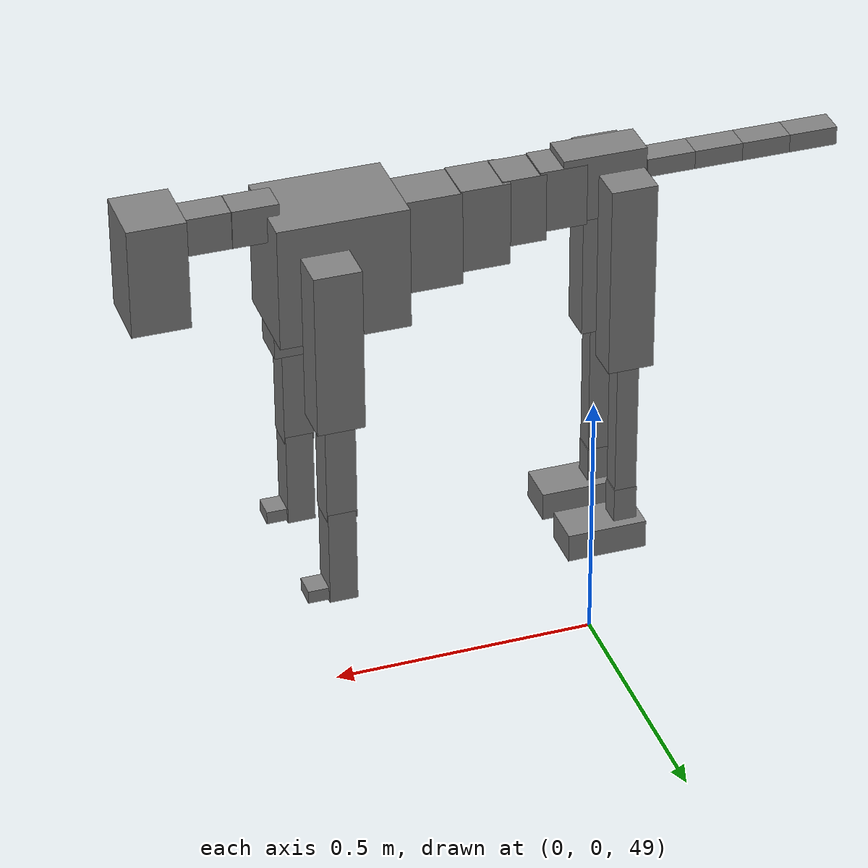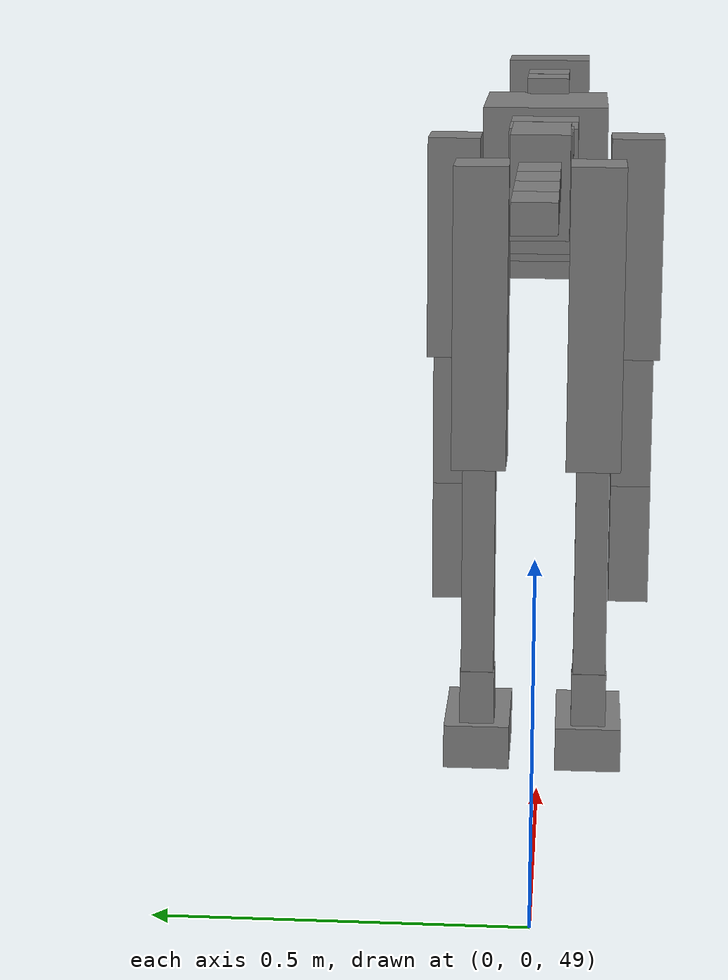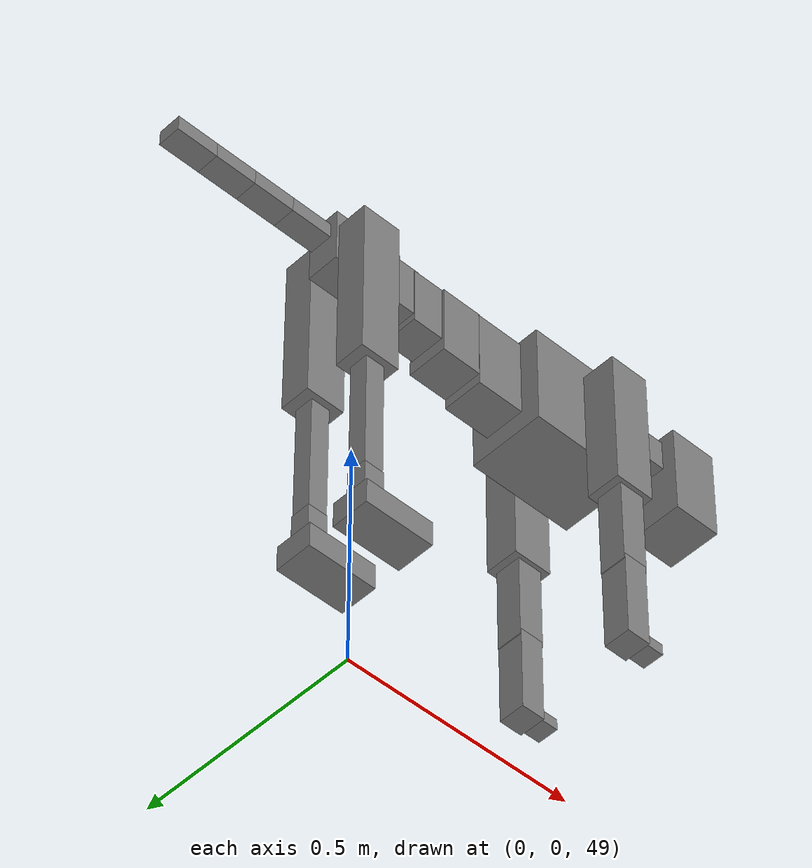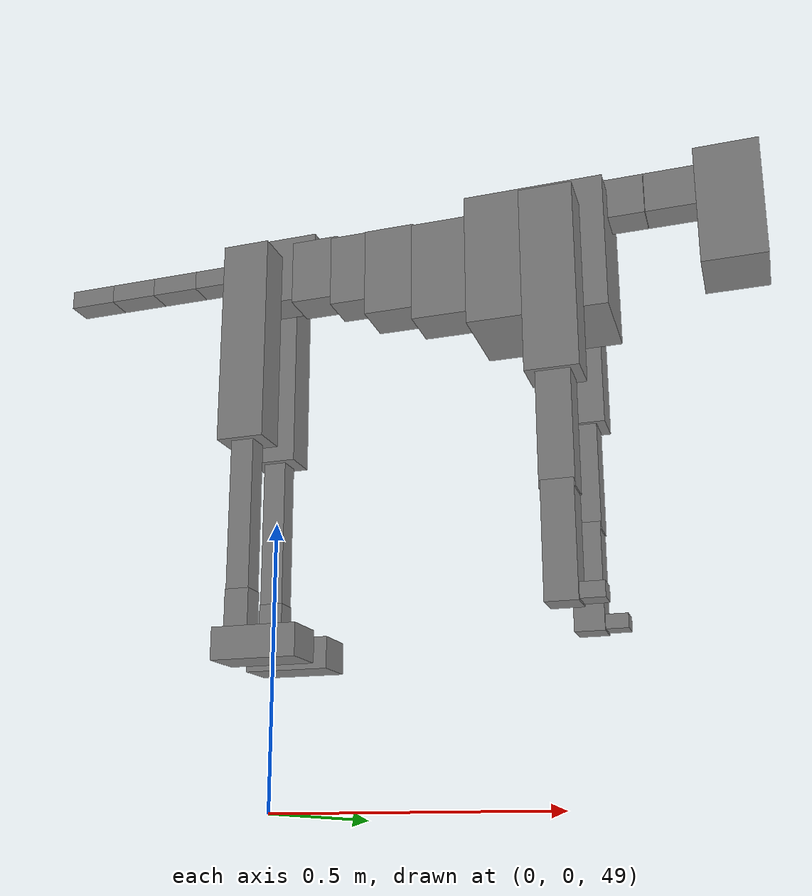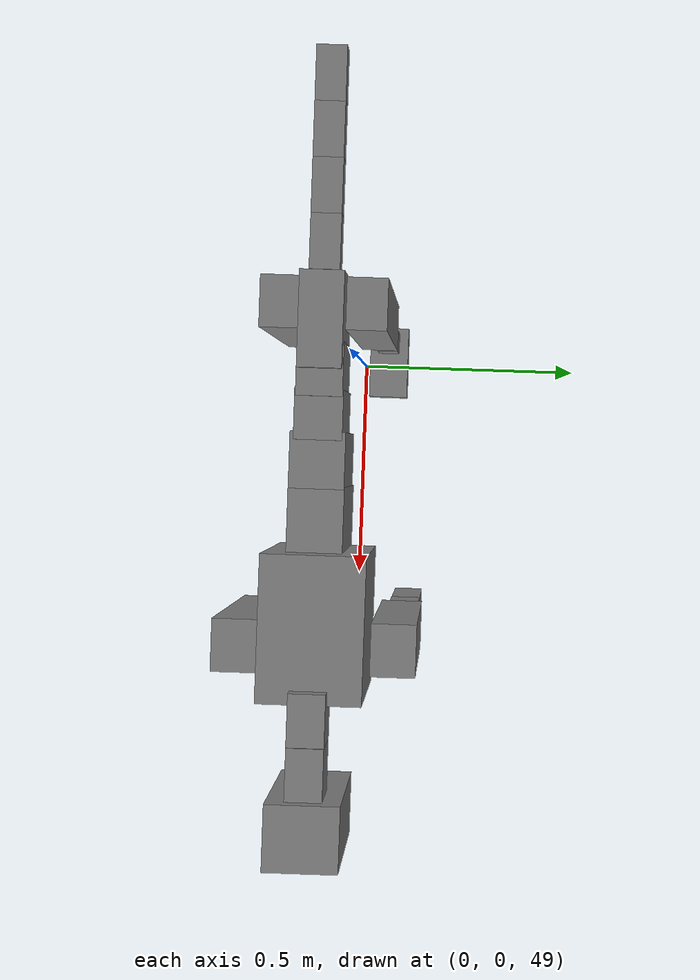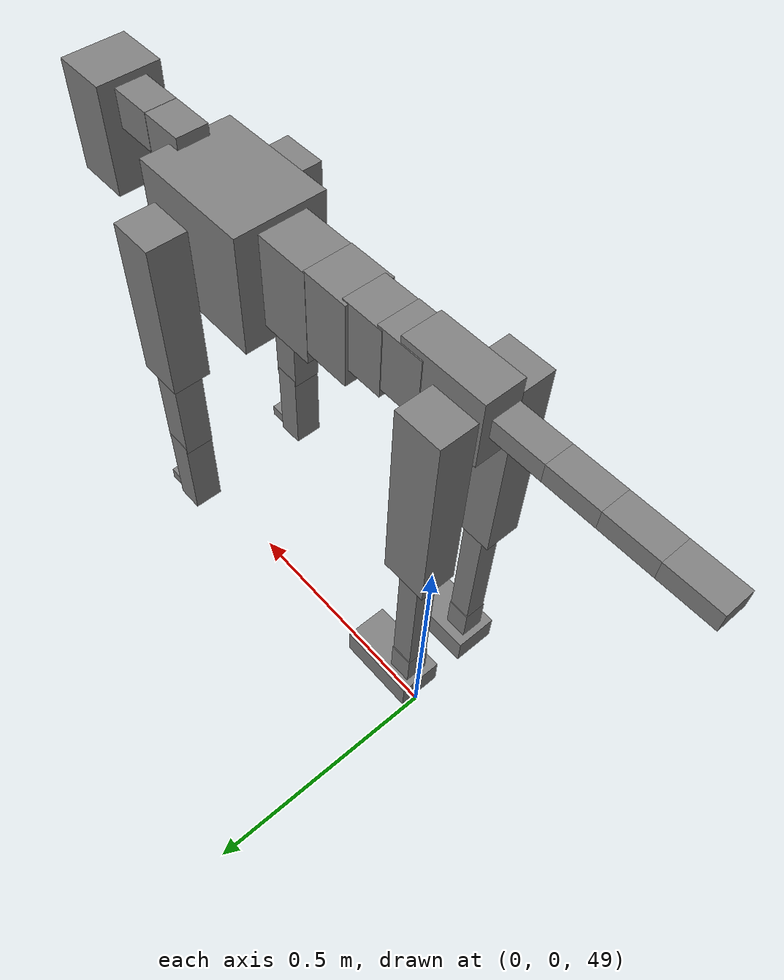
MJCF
<mujoco model="dog">

    <default>
        <joint armature="0.02" stiffness="1" damping="0.2" limited="true"/>
        <geom condim="3" friction="1 0.05 0.05" margin="0.01"/>
        <motor ctrllimited="true" ctrlrange="-1.0 1.0" forcelimited="true" gear="50"/>
    </default>

    <compiler inertiafromgeom="true" angle="radian"/>

    <option timestep="0.016" iterations="50" tolerance="1e-10" solver="Newton" jacobian="dense" cone="pyramidal"/>

    <size nconmax="20000" njmax="60000" nstack="5000000"/>
    <visual>
        <map force="0.1" zfar="30"/>
        <rgba haze="0.15 0.25 0.35 1"/>
        <quality shadowsize="2048"/>
        <global offwidth="800" offheight="800"/>
    </visual>

    <asset>
        <texture type="skybox" builtin="gradient" rgb1="0.3 0.5 0.7" rgb2="0 0 0" width="512" height="512"/>
        <texture name="texplane" type="2d" builtin="checker" rgb1=".2 .3 .4" rgb2=".1 0.15 0.2" width="512" height="512"
                 mark="cross" markrgb=".8 .8 .8"/>
        <texture name="texgeom" type="cube" builtin="flat" mark="cross" width="127" height="1278" rgb1="0.8 0.6 0.4"
                 rgb2="0.8 0.6 0.4" markrgb="1 1 1" random="0.01"/>

        <material name="matplane" reflectance="0.3" texture="texplane" texrepeat="1 1" texuniform="true"/>
        <material name="matgeom" texture="texgeom" texuniform="true" rgba="0.8 0.6 .4 1"/>
    </asset>

    <worldbody>
        <geom name="floor" pos="0 0 0" size="0 0 .25" type="plane" material="matplane" condim="3"/>

        <light directional="false" diffuse=".2 .2 .2" specular="0 0 0" pos="0 0 5" dir="0 0 -1" castshadow="false"/>
        <light mode="targetbodycom" target="torso" directional="false" diffuse=".8 .8 .8" specular="0.3 0.3 0.3"
               pos="0 0 4.0" dir="0 0 -1"/>

        <body name="root" pos="0 0 50">
            <freejoint name="root_1"/>
            <geom type="box" pos="0 0 -0.02" size="0.0774  0.0358  0.063" density="2030"/>

            <body name="spine1" pos="0.054 0 0">
                <joint name="spine1_y" axis="0 1 0" range="0 0.7" limited="true"/>
                <geom type="box" pos="0.02375 0 -0.03" size="0.04375  0.0375  0.05985" density="2030"/>

                <body name="spine2" pos="0.0612 0 0">
                    <joint name="spine2_y" axis="0 1 0" range="-0.15 0.15" limited="true"/>
                    <geom type="box" pos="0.03555  0  -0.04" size="0.04055  0.039  0.06615" density="2030"/>

                    <body name="spine3" pos="0.0730 0 0">
                        <joint name="spine3_y" axis="0 1 0" range="-0.15 0.15" limited="true"/>
                        <geom type="box" pos="0.03555  0  -0.057" size="0.04555  0.0445  0.081" density="2030"/>

                        <body name="spine4" pos="0.0780 0 0">
                            <joint name="spine4_y" axis="0 1 0" range="-0.15 0.15" limited="true"/>
                            <geom type="box" pos="0.05265  0  -0.07" size="0.05265  0.045  0.09135" density="2030"/>

                            <body name="torso" pos="0.1082 0 0">
                                <joint name="torso_y" axis="0 1 0" range="-0.15 0.15" limited="true"/>
                                <geom type="box" pos="0.11925  0  -0.085" size="0.11925  0.085  0.11745"
                                      density="2030"/>

                                <body name="neck1" pos="0.2160  0   0.0180">
                                    <joint name="neck1_y" axis="0 1 0" range="-1.2  -1" limited="true"/>
                                    <geom type="box" pos="0.0423  0  0" size="0.0423  0.03  0.036" density="2325"/>

                                    <body name="neck2" pos="0.0853  0  0">
                                        <joint name="neck2_y" axis="0 1 0" range="0.1  0" limited="true"/>
                                        <geom type="box" pos="0.0423  0  0" size="0.0423  0.03  0.036" density="2325"/>

                                        <body name="head" pos="0.0853  0  0">
                                            <joint name="head_y" axis="0 1 0" range="-0.3  -0.2" limited="true"/>
                                            <geom type="box" pos="0.0531  0  -0.055" size="0.0531  0.06  0.1044"
                                                  density="4030"/>

                                        </body>
                                    </body>
                                </body>

                                <body name="front_shoulder" pos="0.156  0   -0.0480">
                                    <joint name="front_shoulder_y" axis="0 1 0" range="-1 1.5" limited="true"/>
                                    <geom type="box" pos="0 0.13 -0.1316" size="0.0436  0.0373  0.1582" density="1158"/>
                                    <geom type="box" pos="0 -0.13 -0.1316" size="0.0436  0.0373  0.1582"
                                          density="1158"/>

                                    <body name="front_elbow" pos="0  0  -0.2632">
                                        <joint name="front_elbow_y" axis="0 1 0" range="-2 0" limited="true"/>
                                        <geom type="box" pos="0 0.13 -0.1088" size="0.0279  0.0286  0.1088"
                                              density="1081"/>
                                        <geom type="box" pos="0 -0.13 -0.1088" size="0.0279  0.0286  0.1088"
                                              density="1081"/>

                                        <body name="front_wrist" pos="0  0  -0.2176">
                                            <joint name="front_wrist_y" axis="0 1 0" range="-0.2 0" limited="true"/>
                                            <geom type="box" pos="0 0.13 -0.0812" size="0.0260  0.0288  0.0943"
                                                  density="1664"/>
                                            <geom type="box" pos="0 -0.13 -0.0812" size="0.0260  0.0288  0.0943"
                                                  density="1664"/>

                                            <body name="front_finger_end" pos="0  0  -0.1624">
                                                <joint name="front_finger_y" axis="0 1 0" range="-0.4 1"
                                                       limited="true"/>
                                                <geom type="box" pos="0.0228  0.13  0.0025"
                                                      size="0.0418  0.0228  0.0125" density="1515"/>
                                                <geom type="box" pos="0.0228  -0.13  0.0025"
                                                      size="0.0418  0.0228  0.0125" density="1515"/>

                                            </body>

                                        </body>
                                    </body>
                                </body>

                            </body>
                        </body>
                    </body>
                </body>
            </body>

            <body name="back_hip" pos="-0.03 0 -0.018">
                <joint name="back_hip_y" axis="0 1 0" range="-1.5 0.3" limited="true"/>
                <geom type="box" pos="0 0.07 -0.1632" size="0.0426  0.0334  0.1860" density="1154"/>
                <geom type="box" pos="0 -0.07 -0.1632" size="0.0426  0.0334  0.1860" density="1154"/>

                <body name="back_knee" pos="0  0  -0.3265">
                    <joint name="back_knee_y" axis="0 1 0" range="0 2.8" limited="true"/>
                    <geom type="box" pos="0 0.07 -0.1497" size="0.0206  0.0203  0.1652" density="1227"/>
                    <geom type="box" pos="0 -0.07 -0.1497" size="0.0206  0.0203  0.1652" density="1227"/>

                    <body name="back_ankle" pos="0  0  -0.2993">
                        <joint name="back_ankle_y" axis="0 1 0" range="-2.2 0" limited="true"/>
                        <geom type="box" pos="0 0.07 -0.0359" size="0.0216  0.0216  0.0471" density="1284"/>
                        <geom type="box" pos="0 -0.07 -0.0359" size="0.0216  0.0216  0.0471" density="1284"/>

                        <body name="back_toe_end" pos="0  0  -0.0717">
                            <joint name="back_toe_y" axis="0 1 0" range="-0.4 1" limited="true"/>
                            <geom type="box" pos="0.0410  0.07  -0.0127" size="0.0752  0.0410  0.0277" density="1515"/>
                            <geom type="box" pos="0.0410  -0.07  -0.0127" size="0.0752  0.0410  0.0277" density="1515"/>

                        </body>
                    </body>
                </body>
            </body>

            <body name="tail1" pos="-0.074 0 -0.006">
                <joint name="tail1_y" axis="0 1 0" range="-0.2 0.2" limited="true"/>
                <geom type="box" pos="-0.0536  0  0" size="0.045  0.025  0.0175" density="1587"/>

                <body name="tail2" pos="-0.09 0 0">
                    <joint name="tail2_y" axis="0 1 0" range="-0.2 0.2" limited="true"/>
                    <geom type="box" pos="-0.0536  0  0" size="0.045  0.025  0.0175" density="1587"/>

                    <body name="tail3" pos="-0.09 0 0">
                        <joint name="tail3_y" axis="0 1 0" range="-0.2 0.2" limited="true"/>
                        <geom type="box" pos="-0.0536  0  0" size="0.045  0.025  0.0175" density="1587"/>

                        <body name="tail4" pos="-0.09 0 0">
                            <joint name="tail4_y" axis="0 1 0" range="-0.2 0.2" limited="true"/>
                            <geom type="box" pos="-0.0536  0  0" size="0.045  0.025  0.0175" density="1587"/>

                        </body>
                    </body>
                </body>
            </body>
        </body>
    </worldbody>

    <actuator>
        <motor joint="spine1_y" forcerange="-150 150     "/>
        <motor joint="spine2_y" forcerange="-150 150     "/>
        <motor joint="spine3_y" forcerange="-150 150     "/>
        <motor joint="spine4_y" forcerange="-150 150     "/>
        <motor joint="torso_y" forcerange="-150 150     "/>
        <motor joint="neck1_y" forcerange="-100 100       "/>
        <motor joint="neck2_y" forcerange="-100 100       "/>
        <motor joint="head_y" forcerange="-150 150       "/>
        <motor joint="front_shoulder_y" forcerange="-183.41 165.02"/>
        <motor joint="front_elbow_y" forcerange="-121.20 186.60"/>
        <motor joint="front_wrist_y" forcerange="-105.37 125.36"/>
        <motor joint="front_finger_y" forcerange="-23.79 57.78"/>
        <motor joint="back_hip_y" forcerange="-354.64 290.98"/>
        <motor joint="back_knee_y" forcerange="-278.25 217.62"/>
        <motor joint="back_angle_y" forcerange="-175.08 70.00"/>
        <motor joint="back_toe_y" forcerange="-139.89 108.34"/>
        <motor joint="tail1_y" forcerange="-50 50     "/>
        <motor joint="tail2_y" forcerange="-50 50     "/>
        <motor joint="tail3_y" forcerange="-50 50     "/>
        <motor joint="tail4_y" forcerange="-50 50     "/>
    </actuator>
</mujoco>
